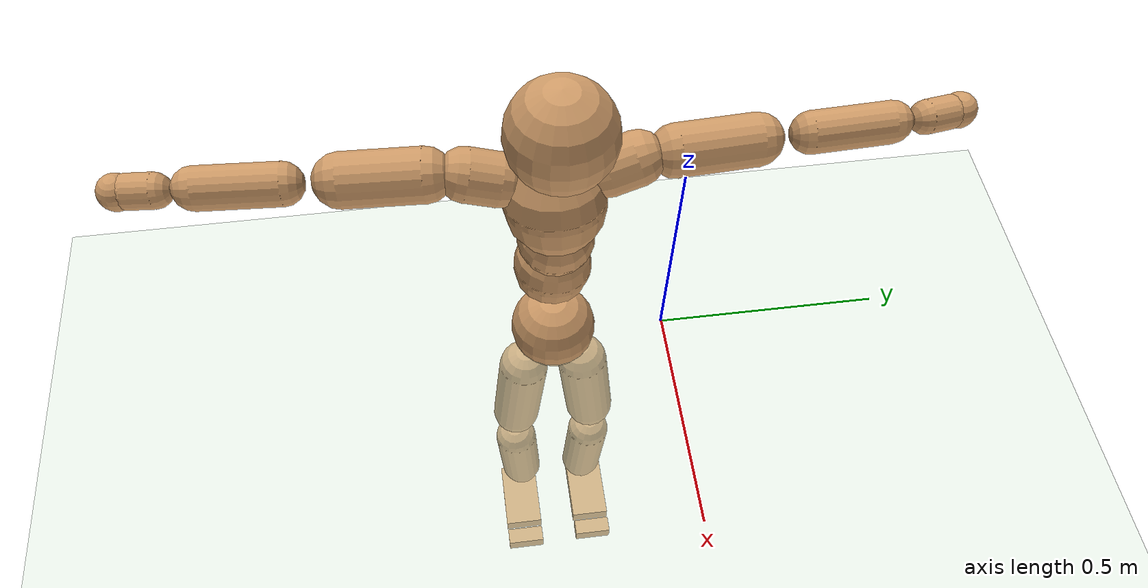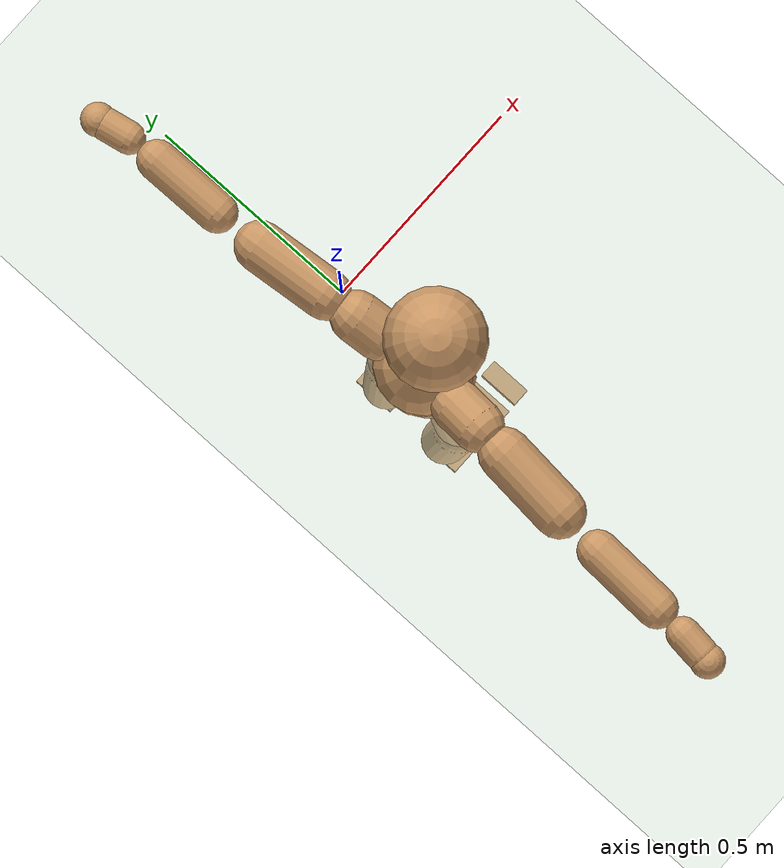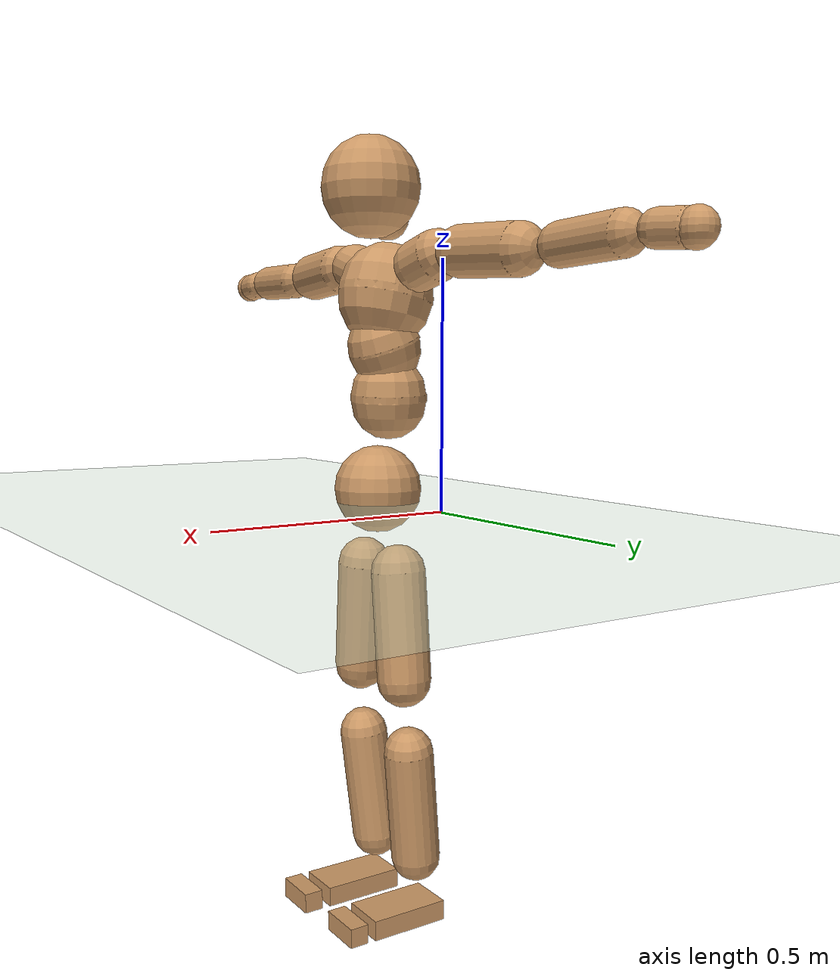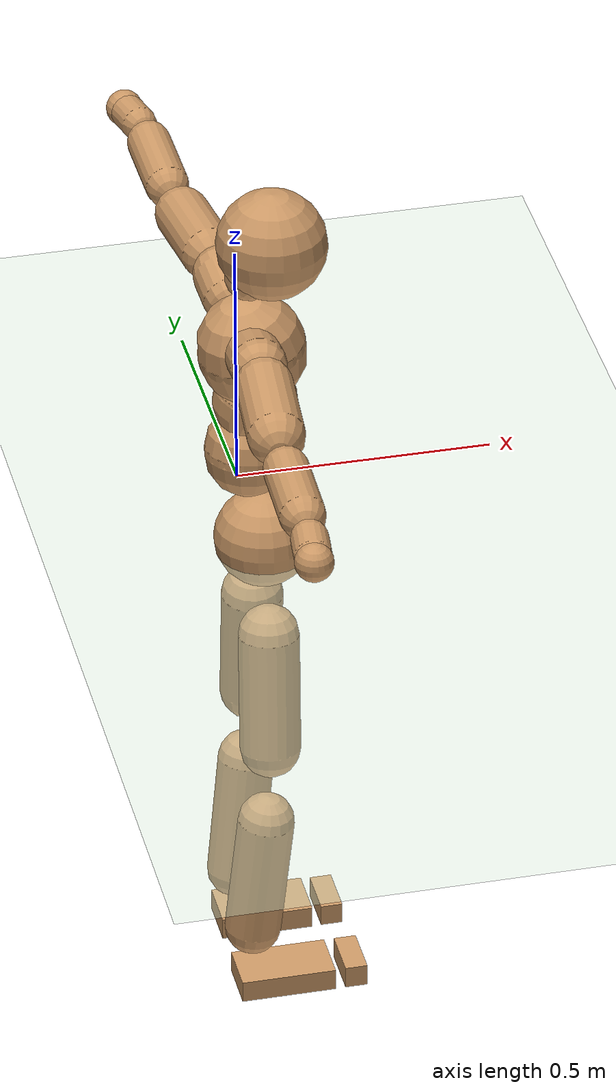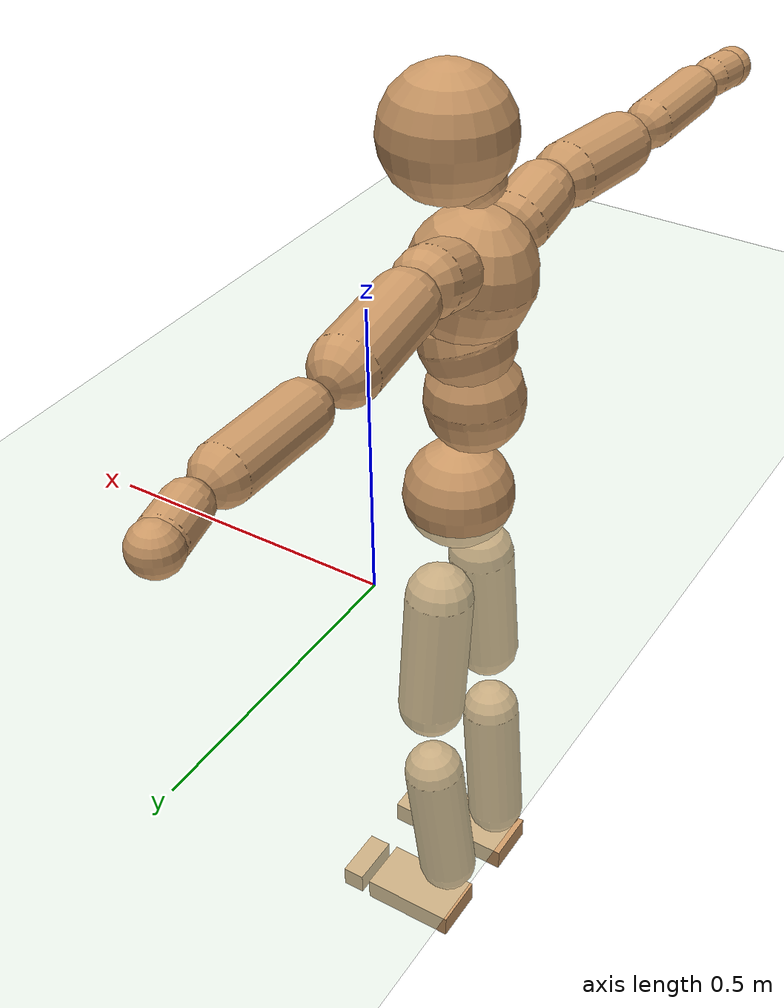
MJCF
<mujoco model="humanoid">
  <compiler coordinate="local"/>
  <default>
    <joint damping="0.0" armature="0.01" stiffness="0.0" limited="true"/>
    <geom conaffinity="1" condim="3" contype="7" margin="0.001" rgba="0.8 0.6 .4 1"/>
  </default>
  <asset>
    <texture type="skybox" builtin="gradient" rgb1=".4 .5 .6" rgb2="0 0 0" width="100" height="100"/>
    <texture builtin="flat" height="1278" mark="cross" markrgb="1 1 1" name="texgeom" random="0.01" rgb1="0.8 0.6 0.4" rgb2="0.8 0.6 0.4" type="cube" width="127"/>
    <texture builtin="checker" height="100" name="texplane" rgb1="0 0 0" rgb2="0.8 0.8 0.8" type="2d" width="100"/>
    <material name="MatPlane" reflectance="0.5" shininess="1" specular="1" texrepeat="60 60" texture="texplane"/>
    <material name="geom" texture="texgeom" texuniform="true"/>
  </asset>
  <worldbody>
    <light cutoff="100" diffuse="1 1 1" dir="-0 0 -1.3" directional="true" exponent="1" pos="0 0 1.3" specular=".1 .1 .1"/>
    <geom conaffinity="1" condim="3" name="floor" pos="0 0 0" rgba="0.8 0.9 0.8 1" size="100 100 .2" type="plane" material="MatPlane"/>
    <body name="Pelvis" pos="-0.0036 -0.2523 0.0256">
      <freejoint name="Pelvis"/>
      <geom type="sphere" contype="1" conaffinity="1" density="4629.6296296296305" size="0.0958" pos="0.0000 0.0000 0.0000" name="Pelvis"/>
      <body name="L_Hip" pos="-0.0072 0.0638 -0.0966">
        <joint name="L_Hip_x" type="hinge" pos="0 0 0" axis="1 0 0" stiffness="800" damping="80" armature="0.02" range="-90.0000 90.0000"/>
        <joint name="L_Hip_y" type="hinge" pos="0 0 0" axis="0 1 0" stiffness="800" damping="80" armature="0.02" range="-90.0000 90.0000"/>
        <joint name="L_Hip_z" type="hinge" pos="0 0 0" axis="0 0 1" stiffness="800" damping="80" armature="0.02" range="-90.0000 90.0000"/>
        <geom type="capsule" contype="1" conaffinity="1" density="2040.816327" fromto="0.0003 0.0083 -0.0793 0.0012 0.0330 -0.3174" size="0.06" name="L_Hip"/>
        <body name="L_Knee" pos="0.0015 0.0413 -0.3967">
          <joint name="L_Knee_x" type="hinge" pos="0 0 0" axis="1 0 0" stiffness="800" damping="80" armature="0.02" range="-5.6250 5.6250"/>
          <joint name="L_Knee_y" type="hinge" pos="0 0 0" axis="0 1 0" stiffness="800" damping="80" armature="0.02" range="0.0000 180.0000"/>
          <joint name="L_Knee_z" type="hinge" pos="0 0 0" axis="0 0 1" stiffness="800" damping="80" armature="0.02" range="-5.6250 5.6250"/>
          <geom type="capsule" contype="1" conaffinity="1" density="1234.567901" fromto="-0.0086 -0.0035 -0.0853 -0.0345 -0.0140 -0.3410" size="0.055" name="L_Knee"/>
          <body name="L_Ankle" pos="-0.0431 -0.0175 -0.4263">
            <joint name="L_Ankle_x" type="hinge" pos="0 0 0" axis="1 0 0" stiffness="800" damping="80" armature="0.02" range="-45.0000 45.0000"/>
            <joint name="L_Ankle_y" type="hinge" pos="0 0 0" axis="0 1 0" stiffness="800" damping="80" armature="0.02" range="-90.0000 90.0000"/>
            <joint name="L_Ankle_z" type="hinge" pos="0 0 0" axis="0 0 1" stiffness="800" damping="80" armature="0.02" range="-45.0000 45.0000"/>
            <geom type="box" contype="1" conaffinity="1" density="999.999984" pos="0.0643 0.0147 -0.0291" size="0.0902 0.0517 0.0224" quat="1.0000 0.0000 0.0000 0.0000" name="L_Ankle"/>
            <body name="L_Toe" pos="0.1286 0.0294 -0.0581">
              <joint name="L_Toe_x" type="hinge" pos="0 0 0" axis="1 0 0" stiffness="500" damping="50" armature="0.02" range="-180.0000 180.0000"/>
              <joint name="L_Toe_y" type="hinge" pos="0 0 0" axis="0 1 0" stiffness="500" damping="50" armature="0.02" range="-180.0000 180.0000"/>
              <joint name="L_Toe_z" type="hinge" pos="0 0 0" axis="0 0 1" stiffness="500" damping="50" armature="0.02" range="-180.0000 180.0000"/>
              <geom type="box" contype="1" conaffinity="1" density="1033.103566" pos="0.0653 -0.0147 0.0284" size="0.0213 0.0503 0.0217" quat="1.0000 0.0000 0.0000 0.0000" name="L_Toe"/>
            </body>
          </body>
        </body>
      </body>
      <body name="R_Hip" pos="-0.0053 -0.0625 -0.095">
        <joint name="R_Hip_x" type="hinge" pos="0 0 0" axis="1 0 0" stiffness="800" damping="80" armature="0.02" range="-90.0000 90.0000"/>
        <joint name="R_Hip_y" type="hinge" pos="0 0 0" axis="0 1 0" stiffness="800" damping="80" armature="0.02" range="-90.0000 90.0000"/>
        <joint name="R_Hip_z" type="hinge" pos="0 0 0" axis="0 0 1" stiffness="800" damping="80" armature="0.02" range="-90.0000 90.0000"/>
        <geom type="capsule" contype="1" conaffinity="1" density="2040.816327" fromto="-0.0012 -0.0086 -0.0814 -0.0048 -0.0344 -0.3256" size="0.0588" name="R_Hip"/>
        <body name="R_Knee" pos="-0.006 -0.043 -0.407">
          <joint name="R_Knee_x" type="hinge" pos="0 0 0" axis="1 0 0" stiffness="800" damping="80" armature="0.02" range="-5.6250 5.6250"/>
          <joint name="R_Knee_y" type="hinge" pos="0 0 0" axis="0 1 0" stiffness="800" damping="80" armature="0.02" range="0.0000 180.0000"/>
          <joint name="R_Knee_z" type="hinge" pos="0 0 0" axis="0 0 1" stiffness="800" damping="80" armature="0.02" range="-5.6250 5.6250"/>
          <geom type="capsule" contype="1" conaffinity="1" density="1234.567901" fromto="-0.0084 0.0039 -0.0854 -0.0335 0.0156 -0.3416" size="0.0549" name="R_Knee"/>
          <body name="R_Ankle" pos="-0.0418 0.0195 -0.427">
            <joint name="R_Ankle_x" type="hinge" pos="0 0 0" axis="1 0 0" stiffness="800" damping="80" armature="0.02" range="-45.0000 45.0000"/>
            <joint name="R_Ankle_y" type="hinge" pos="0 0 0" axis="0 1 0" stiffness="800" damping="80" armature="0.02" range="-90.0000 90.0000"/>
            <joint name="R_Ankle_z" type="hinge" pos="0 0 0" axis="0 0 1" stiffness="800" damping="80" armature="0.02" range="-45.0000 45.0000"/>
            <geom type="box" contype="1" conaffinity="1" density="999.999963" pos="0.0666 -0.0143 -0.0254" size="0.0928 0.0517 0.0223" quat="1.0000 0.0000 0.0000 0.0000" name="R_Ankle"/>
            <body name="R_Toe" pos="0.1333 -0.0287 -0.0507">
              <joint name="R_Toe_x" type="hinge" pos="0 0 0" axis="1 0 0" stiffness="500" damping="50" armature="0.02" range="-180.0000 180.0000"/>
              <joint name="R_Toe_y" type="hinge" pos="0 0 0" axis="0 1 0" stiffness="500" damping="50" armature="0.02" range="-180.0000 180.0000"/>
              <joint name="R_Toe_z" type="hinge" pos="0 0 0" axis="0 0 1" stiffness="500" damping="50" armature="0.02" range="-180.0000 180.0000"/>
              <geom type="box" contype="1" conaffinity="1" density="1039.443498" pos="0.0676 0.0143 0.0256" size="0.0217 0.0507 0.0226" quat="1.0000 0.0000 0.0000 0.0000" name="R_Toe"/>
            </body>
          </body>
        </body>
      </body>
      <body name="Torso" pos="-0.0315 -0.0029 0.1205">
        <joint name="Torso_x" type="hinge" pos="0 0 0" axis="1 0 0" stiffness="1000" damping="100" armature="0.02" range="-60.0000 60.0000"/>
        <joint name="Torso_y" type="hinge" pos="0 0 0" axis="0 1 0" stiffness="1000" damping="100" armature="0.02" range="-60.0000 60.0000"/>
        <joint name="Torso_z" type="hinge" pos="0 0 0" axis="0 0 1" stiffness="1000" damping="100" armature="0.02" range="-60.0000 60.0000"/>
        <geom type="capsule" contype="1" conaffinity="1" density="2040.816327" fromto="0.0030 0.0041 0.0707 0.0036 0.0051 0.0864" size="0.0833" name="Torso"/>
        <body name="Spine" pos="0.0066 0.0092 0.1571">
          <joint name="Spine_x" type="hinge" pos="0 0 0" axis="1 0 0" stiffness="1000" damping="100" armature="0.02" range="-60.0000 60.0000"/>
          <joint name="Spine_y" type="hinge" pos="0 0 0" axis="0 1 0" stiffness="1000" damping="100" armature="0.02" range="-60.0000 60.0000"/>
          <joint name="Spine_z" type="hinge" pos="0 0 0" axis="0 0 1" stiffness="1000" damping="100" armature="0.02" range="-60.0000 60.0000"/>
          <geom type="capsule" contype="1" conaffinity="1" density="2040.816327" fromto="0.0096 0.0003 0.0276 0.0118 0.0003 0.0337" size="0.08" name="Spine"/>
          <body name="Chest" pos="0.0214 0.0006 0.0612">
            <joint name="Chest_x" type="hinge" pos="0 0 0" axis="1 0 0" stiffness="1000" damping="100" armature="0.02" range="-60.0000 60.0000"/>
            <joint name="Chest_y" type="hinge" pos="0 0 0" axis="0 1 0" stiffness="1000" damping="100" armature="0.02" range="-60.0000 60.0000"/>
            <joint name="Chest_z" type="hinge" pos="0 0 0" axis="0 0 1" stiffness="1000" damping="100" armature="0.02" range="-60.0000 60.0000"/>
            <geom type="capsule" contype="1" conaffinity="1" density="2040.816327" fromto="-0.0145 -0.0013 0.0720 -0.0177 -0.0016 0.0880" size="0.1033" name="Chest"/>
            <body name="Neck" pos="-0.0314 -0.0042 0.2267">
              <joint name="Neck_x" type="hinge" pos="0 0 0" axis="1 0 0" stiffness="500" damping="50" armature="0.02" range="-5.6250 5.6250"/>
              <joint name="Neck_y" type="hinge" pos="0 0 0" axis="0 1 0" stiffness="500" damping="50" armature="0.02" range="-90.0000 90.0000"/>
              <joint name="Neck_z" type="hinge" pos="0 0 0" axis="0 0 1" stiffness="500" damping="50" armature="0.02" range="-90.0000 90.0000"/>
              <geom type="capsule" contype="1" conaffinity="1" density="1000" fromto="0.0111 0.0017 0.0146 0.0443 0.0067 0.0584" size="0.0474" name="Neck"/>
              <body name="Head" pos="0.0554 0.0084 0.073">
                <joint name="Head_x" type="hinge" pos="0 0 0" axis="1 0 0" stiffness="500" damping="50" armature="0.02" range="-5.6250 5.6250"/>
                <joint name="Head_y" type="hinge" pos="0 0 0" axis="0 1 0" stiffness="500" damping="50" armature="0.02" range="-90.0000 90.0000"/>
                <joint name="Head_z" type="hinge" pos="0 0 0" axis="0 0 1" stiffness="500" damping="50" armature="0.02" range="-90.0000 90.0000"/>
                <geom type="sphere" contype="1" conaffinity="1" density="1000" size="0.1057" pos="0.0000 0.0000 0.0000" name="Head"/>
              </body>
            </body>
            <body name="L_Thorax" pos="-0.0309 0.0818 0.1288">
              <joint name="L_Thorax_x" type="hinge" pos="0 0 0" axis="1 0 0" stiffness="500" damping="50" armature="0.02" range="-5.6250 5.6250"/>
              <joint name="L_Thorax_y" type="hinge" pos="0 0 0" axis="0 1 0" stiffness="500" damping="50" armature="0.02" range="-5.6250 5.6250"/>
              <joint name="L_Thorax_z" type="hinge" pos="0 0 0" axis="0 0 1" stiffness="500" damping="50" armature="0.02" range="-5.6250 5.6250"/>
              <geom type="capsule" contype="1" conaffinity="1" density="1000" fromto="-0.0020 0.0193 0.0054 -0.0078 0.0774 0.0216" size="0.0547" name="L_Thorax"/>
              <body name="L_Shoulder" pos="-0.0098 0.0967 0.027">
                <joint name="L_Shoulder_x" type="hinge" pos="0 0 0" axis="1 0 0" stiffness="500" damping="50" armature="0.02" range="-720.0000 720.0000"/>
                <joint name="L_Shoulder_y" type="hinge" pos="0 0 0" axis="0 1 0" stiffness="500" damping="50" armature="0.02" range="-720.0000 720.0000"/>
                <joint name="L_Shoulder_z" type="hinge" pos="0 0 0" axis="0 0 1" stiffness="500" damping="50" armature="0.02" range="-720.0000 720.0000"/>
                <geom type="capsule" contype="1" conaffinity="1" density="1000" fromto="-0.0053 0.0547 -0.0028 -0.0214 0.2190 -0.0113" size="0.0528" name="L_Shoulder"/>
                <body name="L_Elbow" pos="-0.0267 0.2737 -0.0141">
                  <joint name="L_Elbow_x" type="hinge" pos="0 0 0" axis="1 0 0" stiffness="500" damping="50" armature="0.02" range="-5.6250 5.6250"/>
                  <joint name="L_Elbow_y" type="hinge" pos="0 0 0" axis="0 1 0" stiffness="500" damping="50" armature="0.02" range="-5.6250 5.6250"/>
                  <joint name="L_Elbow_z" type="hinge" pos="0 0 0" axis="0 0 1" stiffness="500" damping="50" armature="0.02" range="-180.0000 0.0000"/>
                  <geom type="capsule" contype="1" conaffinity="1" density="1000" fromto="-0.0007 0.0533 0.0017 -0.0030 0.2133 0.0067" size="0.0423" name="L_Elbow"/>
                  <body name="L_Wrist" pos="-0.0037 0.2666 0.0084">
                    <joint name="L_Wrist_x" type="hinge" pos="0 0 0" axis="1 0 0" stiffness="300" damping="30" armature="0.02" range="-180.0000 180.0000"/>
                    <joint name="L_Wrist_y" type="hinge" pos="0 0 0" axis="0 1 0" stiffness="300" damping="30" armature="0.02" range="-180.0000 180.0000"/>
                    <joint name="L_Wrist_z" type="hinge" pos="0 0 0" axis="0 0 1" stiffness="300" damping="30" armature="0.02" range="-180.0000 180.0000"/>
                    <geom type="capsule" contype="1" conaffinity="1" density="1000" fromto="-0.0035 0.0180 -0.0012 -0.0140 0.0721 -0.0046" size="0.0342" name="L_Wrist"/>
                    <body name="L_Hand" pos="-0.0176 0.0901 -0.0058">
                      <joint name="L_Hand_x" type="hinge" pos="0 0 0" axis="1 0 0" stiffness="300" damping="30" armature="0.02" range="-180.0000 180.0000"/>
                      <joint name="L_Hand_y" type="hinge" pos="0 0 0" axis="0 1 0" stiffness="300" damping="30" armature="0.02" range="-180.0000 180.0000"/>
                      <joint name="L_Hand_z" type="hinge" pos="0 0 0" axis="0 0 1" stiffness="300" damping="30" armature="0.02" range="-180.0000 180.0000"/>
                      <geom type="sphere" contype="1" conaffinity="1" density="1000" size="0.0358" pos="0.0000 0.0000 0.0000" name="L_Hand"/>
                    </body>
                  </body>
                </body>
              </body>
            </body>
            <body name="R_Thorax" pos="-0.0345 -0.0864 0.1246">
              <joint name="R_Thorax_x" type="hinge" pos="0 0 0" axis="1 0 0" stiffness="500" damping="50" armature="0.02" range="-5.6250 5.6250"/>
              <joint name="R_Thorax_y" type="hinge" pos="0 0 0" axis="0 1 0" stiffness="500" damping="50" armature="0.02" range="-5.6250 5.6250"/>
              <joint name="R_Thorax_z" type="hinge" pos="0 0 0" axis="0 0 1" stiffness="500" damping="50" armature="0.02" range="-5.6250 5.6250"/>
              <geom type="capsule" contype="1" conaffinity="1" density="1000" fromto="-0.0014 -0.0208 0.0061 -0.0055 -0.0832 0.0243" size="0.0537" name="R_Thorax"/>
              <body name="R_Shoulder" pos="-0.0069 -0.104 0.0304">
                <joint name="R_Shoulder_x" type="hinge" pos="0 0 0" axis="1 0 0" stiffness="500" damping="50" armature="0.02" range="-720.0000 720.0000"/>
                <joint name="R_Shoulder_y" type="hinge" pos="0 0 0" axis="0 1 0" stiffness="500" damping="50" armature="0.02" range="-720.0000 720.0000"/>
                <joint name="R_Shoulder_z" type="hinge" pos="0 0 0" axis="0 0 1" stiffness="500" damping="50" armature="0.02" range="-720.0000 720.0000"/>
                <geom type="capsule" contype="1" conaffinity="1" density="1000" fromto="-0.0044 -0.0532 -0.0026 -0.0177 -0.2129 -0.0105" size="0.0543" name="R_Shoulder"/>
                <body name="R_Elbow" pos="-0.0222 -0.2661 -0.0131">
                  <joint name="R_Elbow_x" type="hinge" pos="0 0 0" axis="1 0 0" stiffness="500" damping="50" armature="0.02" range="-5.6250 5.6250"/>
                  <joint name="R_Elbow_y" type="hinge" pos="0 0 0" axis="0 1 0" stiffness="500" damping="50" armature="0.02" range="-5.6250 5.6250"/>
                  <joint name="R_Elbow_z" type="hinge" pos="0 0 0" axis="0 0 1" stiffness="500" damping="50" armature="0.02" range="0.0000 180.0000"/>
                  <geom type="capsule" contype="1" conaffinity="1" density="1000" fromto="-0.0020 -0.0543 0.0012 -0.0082 -0.2173 0.0047" size="0.043" name="R_Elbow"/>
                  <body name="R_Wrist" pos="-0.0102 -0.2716 0.0058">
                    <joint name="R_Wrist_x" type="hinge" pos="0 0 0" axis="1 0 0" stiffness="300" damping="30" armature="0.02" range="-180.0000 180.0000"/>
                    <joint name="R_Wrist_y" type="hinge" pos="0 0 0" axis="0 1 0" stiffness="300" damping="30" armature="0.02" range="-180.0000 180.0000"/>
                    <joint name="R_Wrist_z" type="hinge" pos="0 0 0" axis="0 0 1" stiffness="300" damping="30" armature="0.02" range="-180.0000 180.0000"/>
                    <geom type="capsule" contype="1" conaffinity="1" density="1000" fromto="-0.0020 -0.0181 -0.0009 -0.0080 -0.0725 -0.0035" size="0.035" name="R_Wrist"/>
                    <body name="R_Hand" pos="-0.01 -0.0906 -0.0043">
                      <joint name="R_Hand_x" type="hinge" pos="0 0 0" axis="1 0 0" stiffness="300" damping="30" armature="0.02" range="-180.0000 180.0000"/>
                      <joint name="R_Hand_y" type="hinge" pos="0 0 0" axis="0 1 0" stiffness="300" damping="30" armature="0.02" range="-180.0000 180.0000"/>
                      <joint name="R_Hand_z" type="hinge" pos="0 0 0" axis="0 0 1" stiffness="300" damping="30" armature="0.02" range="-180.0000 180.0000"/>
                      <geom type="sphere" contype="1" conaffinity="1" density="1000" size="0.0364" pos="0.0000 0.0000 0.0000" name="R_Hand"/>
                    </body>
                  </body>
                </body>
              </body>
            </body>
          </body>
        </body>
      </body>
    </body>
  </worldbody>
  <actuator>
    <motor name="L_Hip_x" joint="L_Hip_x" gear="500"/>
    <motor name="L_Hip_y" joint="L_Hip_y" gear="500"/>
    <motor name="L_Hip_z" joint="L_Hip_z" gear="500"/>
    <motor name="L_Knee_x" joint="L_Knee_x" gear="500"/>
    <motor name="L_Knee_y" joint="L_Knee_y" gear="500"/>
    <motor name="L_Knee_z" joint="L_Knee_z" gear="500"/>
    <motor name="L_Ankle_x" joint="L_Ankle_x" gear="500"/>
    <motor name="L_Ankle_y" joint="L_Ankle_y" gear="500"/>
    <motor name="L_Ankle_z" joint="L_Ankle_z" gear="500"/>
    <motor name="L_Toe_x" joint="L_Toe_x" gear="500"/>
    <motor name="L_Toe_y" joint="L_Toe_y" gear="500"/>
    <motor name="L_Toe_z" joint="L_Toe_z" gear="500"/>
    <motor name="R_Hip_x" joint="R_Hip_x" gear="500"/>
    <motor name="R_Hip_y" joint="R_Hip_y" gear="500"/>
    <motor name="R_Hip_z" joint="R_Hip_z" gear="500"/>
    <motor name="R_Knee_x" joint="R_Knee_x" gear="500"/>
    <motor name="R_Knee_y" joint="R_Knee_y" gear="500"/>
    <motor name="R_Knee_z" joint="R_Knee_z" gear="500"/>
    <motor name="R_Ankle_x" joint="R_Ankle_x" gear="500"/>
    <motor name="R_Ankle_y" joint="R_Ankle_y" gear="500"/>
    <motor name="R_Ankle_z" joint="R_Ankle_z" gear="500"/>
    <motor name="R_Toe_x" joint="R_Toe_x" gear="500"/>
    <motor name="R_Toe_y" joint="R_Toe_y" gear="500"/>
    <motor name="R_Toe_z" joint="R_Toe_z" gear="500"/>
    <motor name="Torso_x" joint="Torso_x" gear="500"/>
    <motor name="Torso_y" joint="Torso_y" gear="500"/>
    <motor name="Torso_z" joint="Torso_z" gear="500"/>
    <motor name="Spine_x" joint="Spine_x" gear="500"/>
    <motor name="Spine_y" joint="Spine_y" gear="500"/>
    <motor name="Spine_z" joint="Spine_z" gear="500"/>
    <motor name="Chest_x" joint="Chest_x" gear="500"/>
    <motor name="Chest_y" joint="Chest_y" gear="500"/>
    <motor name="Chest_z" joint="Chest_z" gear="500"/>
    <motor name="Neck_x" joint="Neck_x" gear="500"/>
    <motor name="Neck_y" joint="Neck_y" gear="500"/>
    <motor name="Neck_z" joint="Neck_z" gear="500"/>
    <motor name="Head_x" joint="Head_x" gear="500"/>
    <motor name="Head_y" joint="Head_y" gear="500"/>
    <motor name="Head_z" joint="Head_z" gear="500"/>
    <motor name="L_Thorax_x" joint="L_Thorax_x" gear="500"/>
    <motor name="L_Thorax_y" joint="L_Thorax_y" gear="500"/>
    <motor name="L_Thorax_z" joint="L_Thorax_z" gear="500"/>
    <motor name="L_Shoulder_x" joint="L_Shoulder_x" gear="500"/>
    <motor name="L_Shoulder_y" joint="L_Shoulder_y" gear="500"/>
    <motor name="L_Shoulder_z" joint="L_Shoulder_z" gear="500"/>
    <motor name="L_Elbow_x" joint="L_Elbow_x" gear="500"/>
    <motor name="L_Elbow_y" joint="L_Elbow_y" gear="500"/>
    <motor name="L_Elbow_z" joint="L_Elbow_z" gear="500"/>
    <motor name="L_Wrist_x" joint="L_Wrist_x" gear="500"/>
    <motor name="L_Wrist_y" joint="L_Wrist_y" gear="500"/>
    <motor name="L_Wrist_z" joint="L_Wrist_z" gear="500"/>
    <motor name="L_Hand_x" joint="L_Hand_x" gear="500"/>
    <motor name="L_Hand_y" joint="L_Hand_y" gear="500"/>
    <motor name="L_Hand_z" joint="L_Hand_z" gear="500"/>
    <motor name="R_Thorax_x" joint="R_Thorax_x" gear="500"/>
    <motor name="R_Thorax_y" joint="R_Thorax_y" gear="500"/>
    <motor name="R_Thorax_z" joint="R_Thorax_z" gear="500"/>
    <motor name="R_Shoulder_x" joint="R_Shoulder_x" gear="500"/>
    <motor name="R_Shoulder_y" joint="R_Shoulder_y" gear="500"/>
    <motor name="R_Shoulder_z" joint="R_Shoulder_z" gear="500"/>
    <motor name="R_Elbow_x" joint="R_Elbow_x" gear="500"/>
    <motor name="R_Elbow_y" joint="R_Elbow_y" gear="500"/>
    <motor name="R_Elbow_z" joint="R_Elbow_z" gear="500"/>
    <motor name="R_Wrist_x" joint="R_Wrist_x" gear="500"/>
    <motor name="R_Wrist_y" joint="R_Wrist_y" gear="500"/>
    <motor name="R_Wrist_z" joint="R_Wrist_z" gear="500"/>
    <motor name="R_Hand_x" joint="R_Hand_x" gear="500"/>
    <motor name="R_Hand_y" joint="R_Hand_y" gear="500"/>
    <motor name="R_Hand_z" joint="R_Hand_z" gear="500"/>
  </actuator>
  <contact>
    <exclude body1="Torso" body2="Chest"/>
    <exclude body1="Head" body2="Chest"/>
    <exclude body1="R_Knee" body2="R_Toe"/>
    <exclude body1="R_Knee" body2="L_Ankle"/>
    <exclude body1="R_Knee" body2="L_Toe"/>
    <exclude body1="L_Knee" body2="L_Toe"/>
    <exclude body1="L_Knee" body2="R_Ankle"/>
    <exclude body1="L_Knee" body2="R_Toe"/>
    <exclude body1="L_Shoulder" body2="Chest"/>
    <exclude body1="R_Shoulder" body2="Chest"/>
  </contact>
  <sensor/>
  <size njmax="700" nconmax="700"/>
</mujoco>
